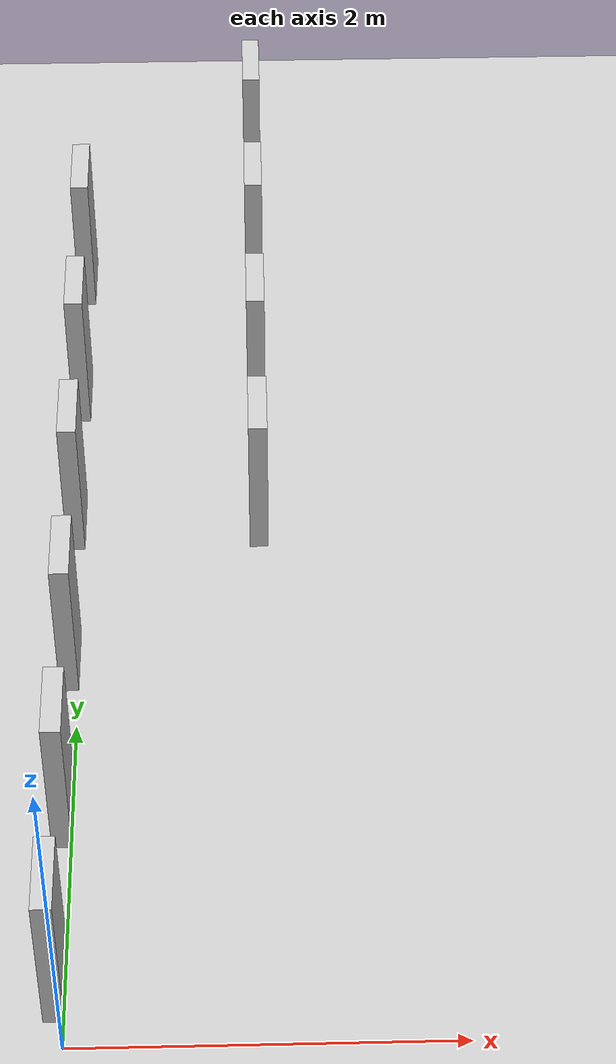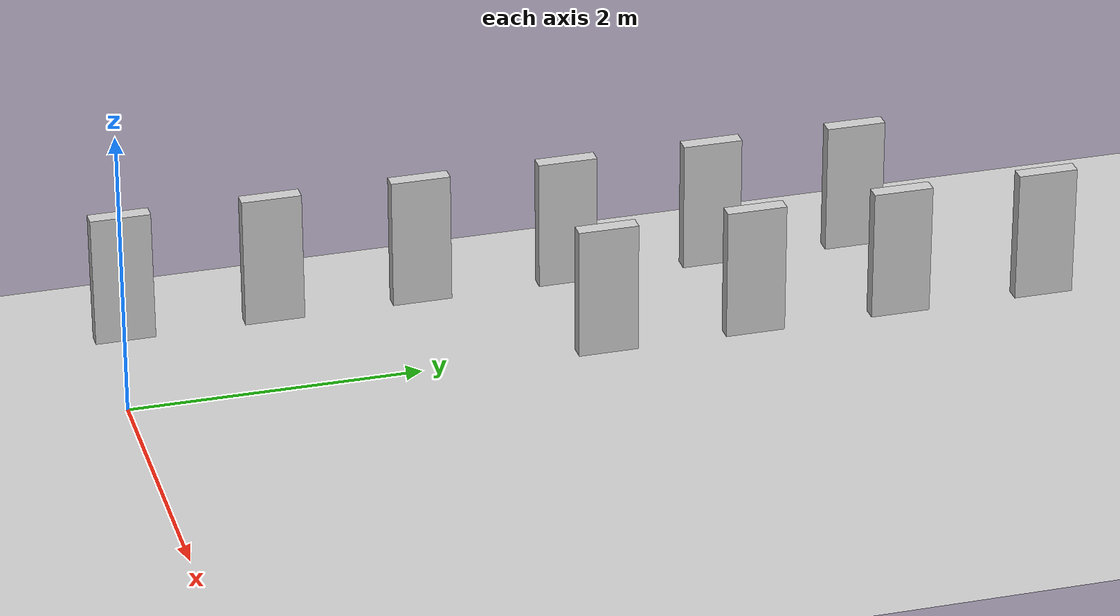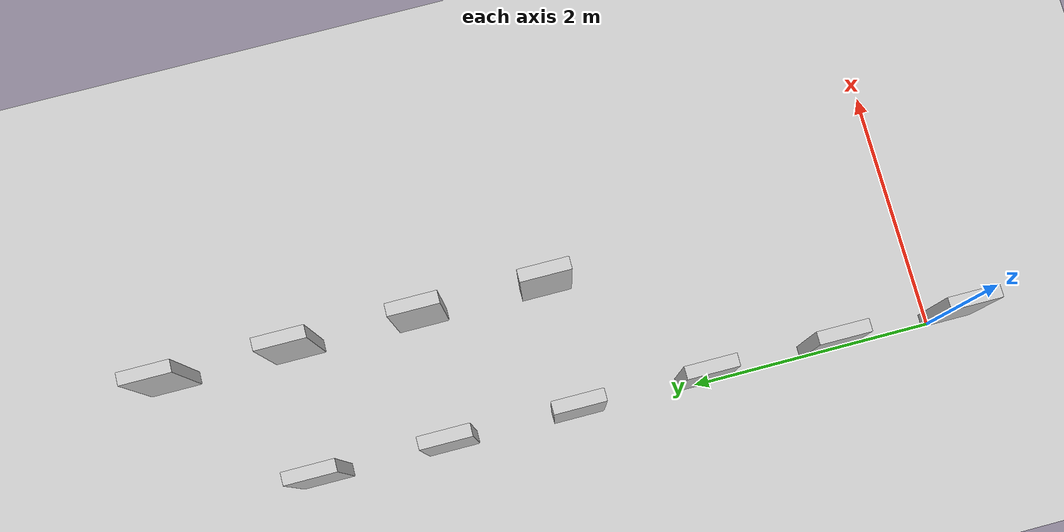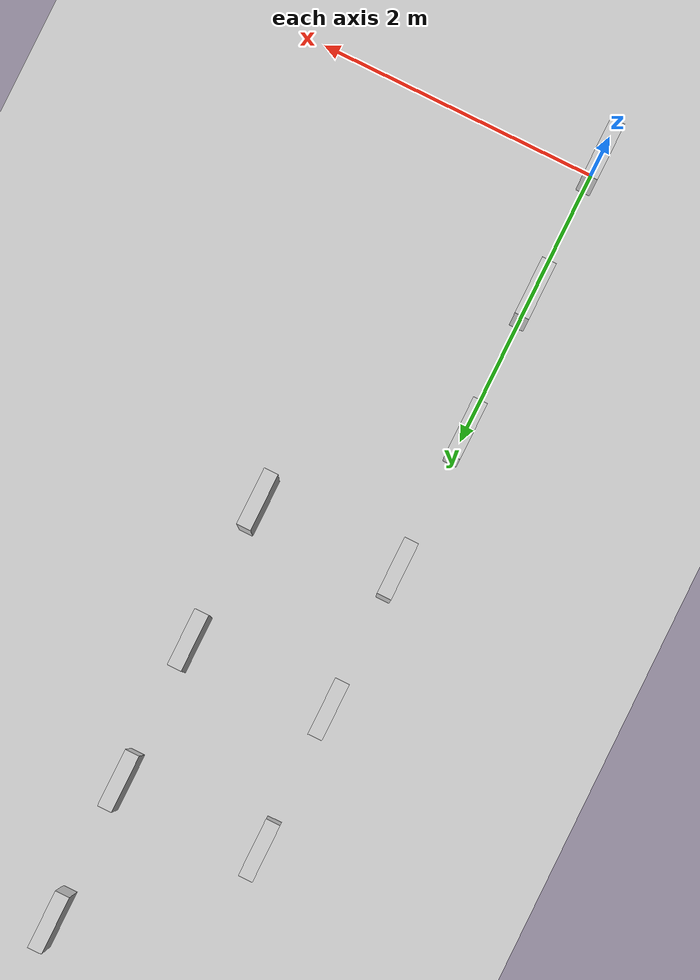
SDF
<?xml version="1.0" ?>
<sdf version="1.11">
  <world name="default">
    <physics name="1ms" type="ode">
      <max_step_size>0.001</max_step_size>
      <real_time_factor>0</real_time_factor>
    </physics>
    <gravity>0 0 0</gravity>
    <plugin
      filename="gz-sim-apply-link-wrench-system"
      name="gz::sim::systems::ApplyLinkWrench"/>
    <plugin filename="gz-sim-physics-system"
            name="gz::sim::systems::Physics"/>
    <plugin filename="gz-sim-user-commands-system"
            name="gz::sim::systems::UserCommands"/>
    <plugin filename="gz-sim-scene-broadcaster-system"
            name="gz::sim::systems::SceneBroadcaster"/>

    <light type="directional" name="sun">
      <cast_shadows>true</cast_shadows>
      <pose>0 0 10 0 0 0</pose>
      <diffuse>0.8 0.8 0.8 1</diffuse>
      <specular>0.2 0.2 0.2 1</specular>
      <attenuation>
        <range>1000</range>
        <constant>0.9</constant>
        <linear>0.01</linear>
        <quadratic>0.001</quadratic>
      </attenuation>
      <direction>-0.5 0.1 -0.9</direction>
    </light>

    <model name="ground_plane">
      <static>true</static>
      <link name="link">
        <collision name="collision">
          <geometry>
            <plane>
              <normal>0 0 1</normal>
              <size>100 100</size>
            </plane>
          </geometry>
        </collision>
        <visual name="visual">
          <geometry>
            <plane>
              <normal>0 0 1</normal>
              <size>100 100</size>
            </plane>
          </geometry>
          <material>
            <ambient>0.8 0.8 0.8 1</ambient>
            <diffuse>0.8 0.8 0.8 1</diffuse>
            <specular>0.8 0.8 0.8 1</specular>
          </material>
        </visual>
      </link>
    </model>

    <model name="box010409_no_rotations">
      <pose degrees="true">0 0 1 0 0 0</pose>
      <link name="link">
        <inertial>
          <mass>9.0</mass>
          <inertia>
            <ixx>0.7275</ixx>
            <ixy>0.0</ixy>
            <ixz>0.0</ixz>
            <iyy>0.6150</iyy>
            <iyz>0.0</iyz>
            <izz>0.1275</izz>
          </inertia>
        </inertial>
        <collision name="collision">
          <geometry>
            <box>
              <size>0.1 0.4 0.9</size>
            </box>
          </geometry>
        </collision>
        <visual name="visual">
          <geometry>
            <box>
              <size>0.1 0.4 0.9</size>
            </box>
          </geometry>
          <material>
            <ambient>0.8 0.8 0.8 1</ambient>
            <diffuse>0.8 0.8 0.8 1</diffuse>
            <specular>0.8 0.8 0.8 1</specular>
          </material>
        </visual>
      </link>
    </model>

    <model name="box010409_no_rotations_auto">
      <pose degrees="true">0 1 1 0 0 0</pose>
      <link name="link">
        <inertial auto="true"/>
        <collision name="collision">
          <density>250</density>
          <geometry>
            <box>
              <size>0.1 0.4 0.9</size>
            </box>
          </geometry>
        </collision>
        <visual name="visual">
          <geometry>
            <box>
              <size>0.1 0.4 0.9</size>
            </box>
          </geometry>
          <material>
            <ambient>0.8 0.8 0.8 1</ambient>
            <diffuse>0.8 0.8 0.8 1</diffuse>
            <specular>0.8 0.8 0.8 1</specular>
          </material>
        </visual>
      </link>
    </model>

    <model name="box010409_model_yaw_90deg">
      <pose degrees="true">0 2 1 0 0 90</pose>
      <link name="link">
        <inertial auto="true"/>
        <collision name="collision">
          <density>250</density>
          <geometry>
            <box>
              <size>0.4 0.1 0.9</size>
            </box>
          </geometry>
        </collision>
        <visual name="visual">
          <geometry>
            <box>
              <size>0.4 0.1 0.9</size>
            </box>
          </geometry>
          <material>
            <ambient>0.8 0.8 0.8 1</ambient>
            <diffuse>0.8 0.8 0.8 1</diffuse>
            <specular>0.8 0.8 0.8 1</specular>
          </material>
        </visual>
      </link>
    </model>

    <model name="box010409_link_yaw_90deg">
      <pose degrees="true">0 3 1 0 0 0</pose>
      <link name="link">
        <pose degrees="true">0 0 0 0 0 90</pose>
        <inertial auto="true"/>
        <collision name="collision">
          <density>250</density>
          <geometry>
            <box>
              <size>0.4 0.1 0.9</size>
            </box>
          </geometry>
        </collision>
        <visual name="visual">
          <geometry>
            <box>
              <size>0.4 0.1 0.9</size>
            </box>
          </geometry>
          <material>
            <ambient>0.8 0.8 0.8 1</ambient>
            <diffuse>0.8 0.8 0.8 1</diffuse>
            <specular>0.8 0.8 0.8 1</specular>
          </material>
        </visual>
      </link>
    </model>

    <model name="box010409_collision_yaw_90deg">
      <pose degrees="true">0 4 1 0 0 0</pose>
      <link name="link">
        <inertial auto="true"/>
        <collision name="collision">
          <pose degrees="true">0 0 0 0 0 90</pose>
          <density>250</density>
          <geometry>
            <box>
              <size>0.4 0.1 0.9</size>
            </box>
          </geometry>
        </collision>
        <visual name="visual">
          <pose degrees="true">0 0 0 0 0 90</pose>
          <geometry>
            <box>
              <size>0.4 0.1 0.9</size>
            </box>
          </geometry>
          <material>
            <ambient>0.8 0.8 0.8 1</ambient>
            <diffuse>0.8 0.8 0.8 1</diffuse>
            <specular>0.8 0.8 0.8 1</specular>
          </material>
        </visual>
      </link>
    </model>

    <model name="box010409_inertial_yaw_90deg">
      <pose degrees="true">0 5 1 0 0 0</pose>
      <link name="link">
        <inertial>
          <pose degrees="true">0 0 0 0 0 90</pose>
          <mass>9.0</mass>
          <inertia>
            <ixx>0.6150</ixx>
            <ixy>0.0</ixy>
            <ixz>0.0</ixz>
            <iyy>0.7275</iyy>
            <iyz>0.0</iyz>
            <izz>0.1275</izz>
          </inertia>
        </inertial>
        <collision name="collision">
          <pose degrees="true">0 0 0 0 0 90</pose>
          <geometry>
            <box>
              <size>0.4 0.1 0.9</size>
            </box>
          </geometry>
        </collision>
        <visual name="visual">
          <pose degrees="true">0 0 0 0 0 90</pose>
          <geometry>
            <box>
              <size>0.4 0.1 0.9</size>
            </box>
          </geometry>
          <material>
            <ambient>0.8 0.8 0.8 1</ambient>
            <diffuse>0.8 0.8 0.8 1</diffuse>
            <specular>0.8 0.8 0.8 1</specular>
          </material>
        </visual>
      </link>
    </model>

    <model name="box010409_model_and_link_yaw_45deg">
      <pose degrees="true">1 3 1 0 0 45</pose>
      <link name="link">
        <pose degrees="true">0 0 0 0 0 45</pose>
        <inertial auto="true"/>
        <collision name="collision">
          <density>250</density>
          <geometry>
            <box>
              <size>0.4 0.1 0.9</size>
            </box>
          </geometry>
        </collision>
        <visual name="visual">
          <geometry>
            <box>
              <size>0.4 0.1 0.9</size>
            </box>
          </geometry>
          <material>
            <ambient>0.8 0.8 0.8 1</ambient>
            <diffuse>0.8 0.8 0.8 1</diffuse>
            <specular>0.8 0.8 0.8 1</specular>
          </material>
        </visual>
      </link>
    </model>

    <model name="box010409_model_and_collision_yaw_45deg">
      <pose degrees="true">1 4 1 0 0 45</pose>
      <link name="link">
        <inertial auto="true"/>
        <collision name="collision">
          <pose degrees="true">0 0 0 0 0 45</pose>
          <density>250</density>
          <geometry>
            <box>
              <size>0.4 0.1 0.9</size>
            </box>
          </geometry>
        </collision>
        <visual name="visual">
          <pose degrees="true">0 0 0 0 0 45</pose>
          <geometry>
            <box>
              <size>0.4 0.1 0.9</size>
            </box>
          </geometry>
          <material>
            <ambient>0.8 0.8 0.8 1</ambient>
            <diffuse>0.8 0.8 0.8 1</diffuse>
            <specular>0.8 0.8 0.8 1</specular>
          </material>
        </visual>
      </link>
    </model>

    <model name="box010409_model_and_inertial_yaw_45deg">
      <pose degrees="true">1 5 1 0 0 45</pose>
      <link name="link">
        <inertial>
          <pose degrees="true">0 0 0 0 0 45</pose>
          <mass>9.0</mass>
          <inertia>
            <ixx>0.6150</ixx>
            <ixy>0.0</ixy>
            <ixz>0.0</ixz>
            <iyy>0.7275</iyy>
            <iyz>0.0</iyz>
            <izz>0.1275</izz>
          </inertia>
        </inertial>
        <collision name="collision">
          <pose degrees="true">0 0 0 0 0 45</pose>
          <geometry>
            <box>
              <size>0.4 0.1 0.9</size>
            </box>
          </geometry>
        </collision>
        <visual name="visual">
          <pose degrees="true">0 0 0 0 0 45</pose>
          <geometry>
            <box>
              <size>0.4 0.1 0.9</size>
            </box>
          </geometry>
          <material>
            <ambient>0.8 0.8 0.8 1</ambient>
            <diffuse>0.8 0.8 0.8 1</diffuse>
            <specular>0.8 0.8 0.8 1</specular>
          </material>
        </visual>
      </link>
    </model>

    <model name="box010409_model_and_inertia_values_yaw_45deg">
      <pose degrees="true">1 6 1 0 0 45</pose>
      <link name="link">
        <inertial>
          <mass>9.0</mass>
          <inertia>
            <ixx>0.67125</ixx>
            <ixy>-0.05625</ixy>
            <ixz>0.0</ixz>
            <iyy>0.67125</iyy>
            <iyz>0.0</iyz>
            <izz>0.1275</izz>
          </inertia>
        </inertial>
        <collision name="collision">
          <pose degrees="true">0 0 0 0 0 45</pose>
          <geometry>
            <box>
              <size>0.4 0.1 0.9</size>
            </box>
          </geometry>
        </collision>
        <visual name="visual">
          <pose degrees="true">0 0 0 0 0 45</pose>
          <geometry>
            <box>
              <size>0.4 0.1 0.9</size>
            </box>
          </geometry>
          <material>
            <ambient>0.8 0.8 0.8 1</ambient>
            <diffuse>0.8 0.8 0.8 1</diffuse>
            <specular>0.8 0.8 0.8 1</specular>
          </material>
        </visual>
      </link>
    </model>

  </world>
</sdf>
